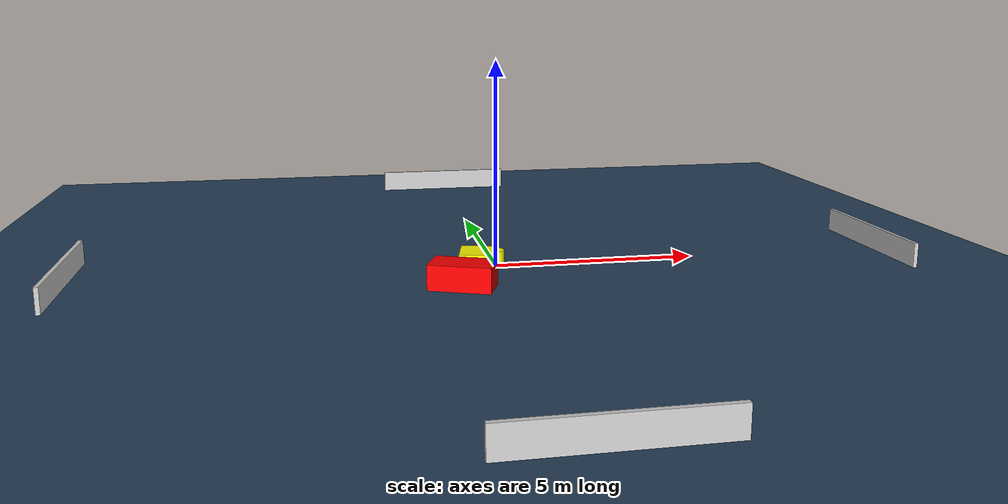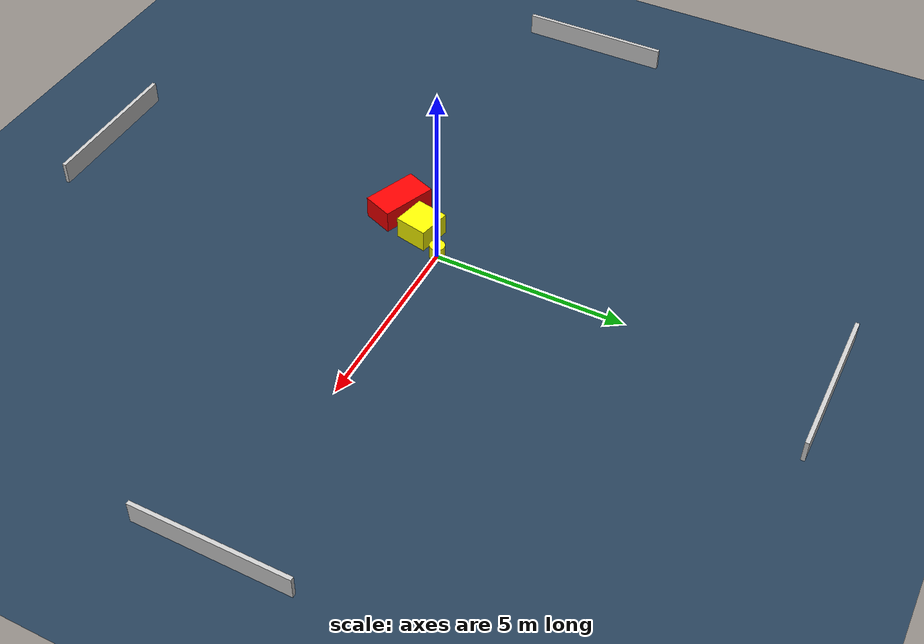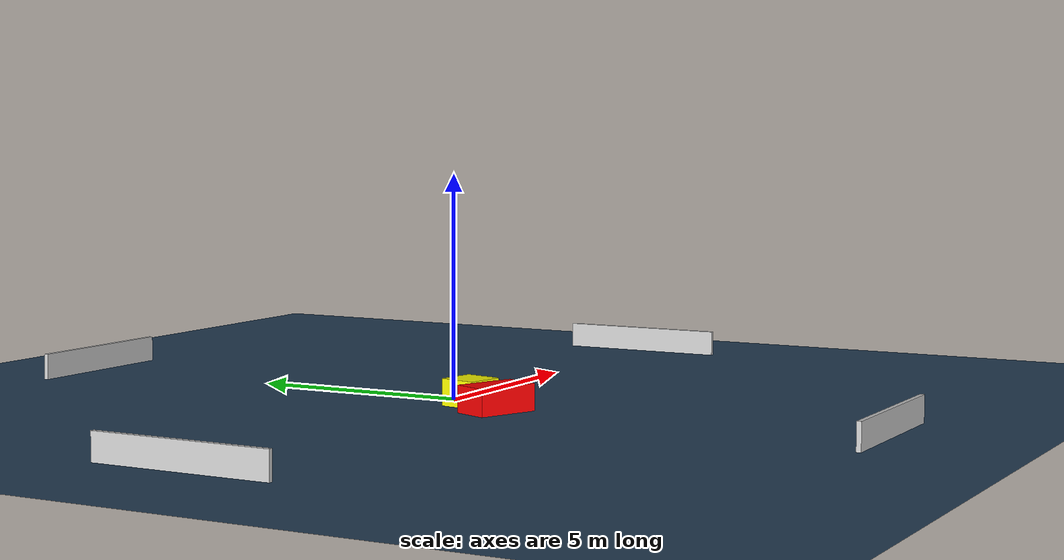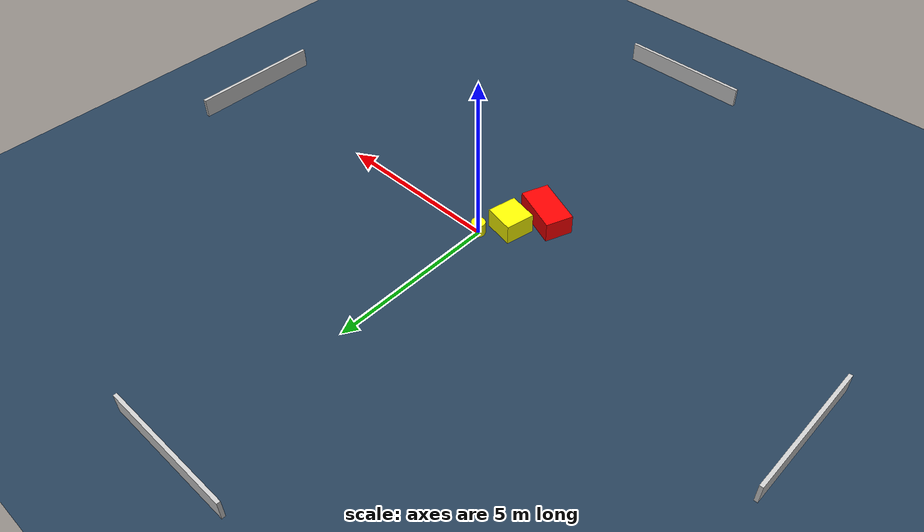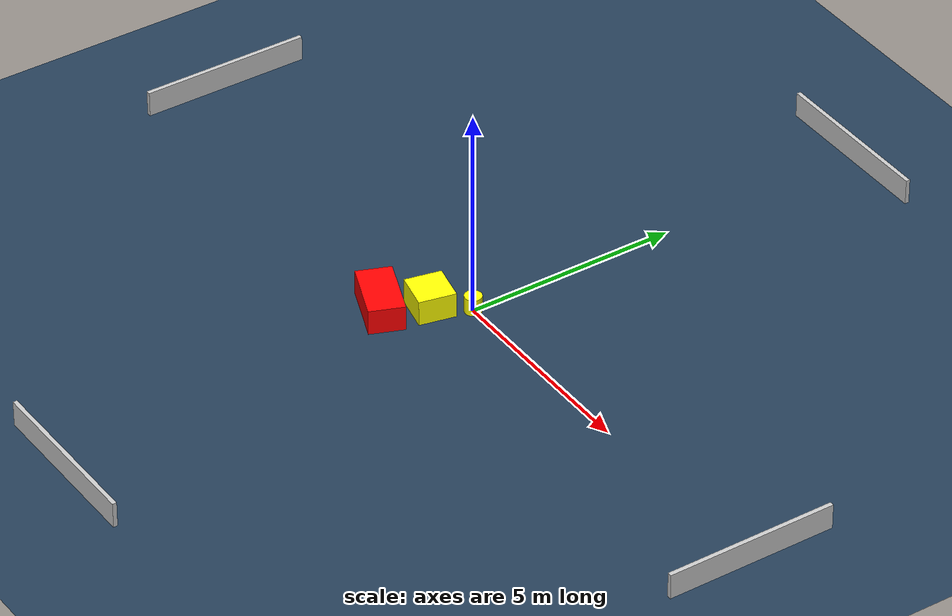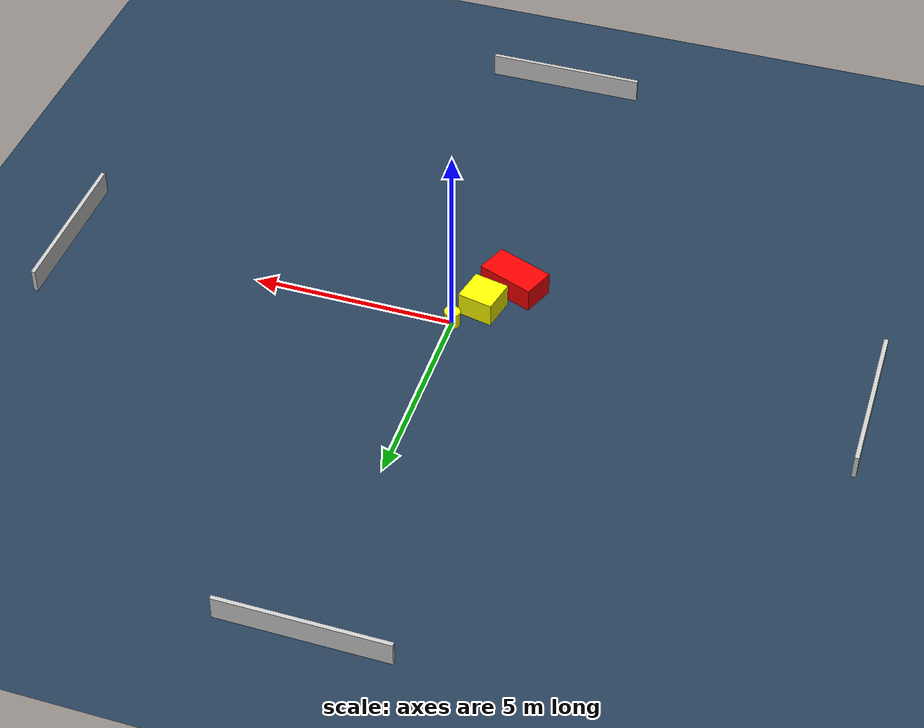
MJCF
<?xml version="1.0" ?>
<mujoco model="generated_environment">
  <option timestep="0.01" integrator="RK4" cone="elliptic"/>
  <default>
    <geom density="1"/>
  </default>
  <asset>
    <texture builtin="gradient" height="3072" name="skybox" rgb1="0.3 0.5 0.7" rgb2="0 0 0" type="skybox" width="512"/>
    <texture builtin="checker" height="300" name="groundplane" rgb1="0.2 0.3 0.4" rgb2="0.1 0.2 0.3" type="2d" width="300"/>
    <material name="groundplane" reflectance="0.2" texrepeat="5 5" texture="groundplane"/>
  </asset>
  <worldbody>
    <light dir="0 0 -1" directional="true" pos="0 0 1.5"/>
    <geom condim="3" friction="0.5 0.005 0.001" material="groundplane" name="floor" pos="0 0 0" size="0 0 0.05" type="plane"/>
    <body name="walls">
      <geom name="wall_1" condim="4" pos="-10.0 0.0 0.3" rgba="0.800000011920929 0.800000011920929 0.800000011920929 1.0" size="0.05 2.0 0.3" type="box"/>
      <geom name="wall_2" condim="4" pos="10.0 0.0 0.3" rgba="0.800000011920929 0.800000011920929 0.800000011920929 1.0" size="0.05 2.0 0.3" type="box"/>
      <geom name="wall_3" condim="4" pos="0.0 -10.0 0.3" rgba="0.800000011920929 0.800000011920929 0.800000011920929 1.0" size="2.0 0.05 0.3" type="box"/>
      <geom name="wall_4" condim="4" pos="0.0 10.0 0.3" rgba="0.800000011920929 0.800000011920929 0.800000011920929 1.0" size="2.0 0.05 0.3" type="box"/>
    </body>
    <body name="robot">
      <joint name="joint_x" type="slide" pos="0 0 0" axis="1 0 0"/>
      <joint name="joint_y" type="slide" pos="0 0 0" axis="0 1 0"/>
      <geom name="robot" type="cylinder" pos="0.0 0.0 0.2" size="0.2 0.2 0.0" mass="5.0" friction="1.0 0.005 0.0001" condim="4" rgba="1.0 1.0 0.0 1.0"/>
    </body>
    <body name="obstacle_1_movable">
      <geom name="obstacle_1_movable" condim="4" pos="-0.546908535576607 -0.7303627107938976 0.3" euler="0 0 77.90955862198376" friction="0.0 0.005 0.001" rgba="1.0 1.0 0.0 1.0" size="0.43088515317674225 0.44061696511762216 0.3" type="box" mass="0.1"/>
      <joint type="free"/>
    </body>
    <body name="obstacle_2_static">
      <geom name="obstacle_2_static" condim="4" pos="-1.0651603499479232 -1.6531922652446709 0.3" euler="0 0 158.45638965390174" friction="0.0 0.005 0.001" rgba="1.0 0.0 0.0 1.0" size="0.7325344131321112 0.4096263151472336 0.3" type="box"/>
    </body>
  </worldbody>
  <actuator>
    <motor name="actuator_x" joint="joint_x" gear="1" ctrlrange="-1 1"/>
    <motor name="actuator_y" joint="joint_y" gear="1" ctrlrange="-1 1"/>
  </actuator>
</mujoco>
